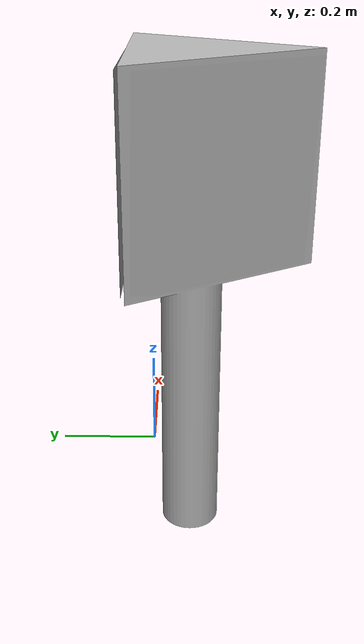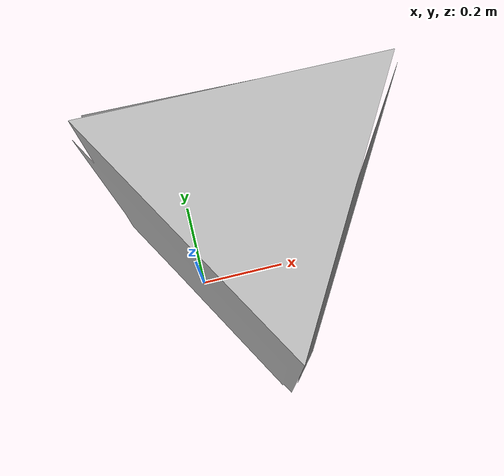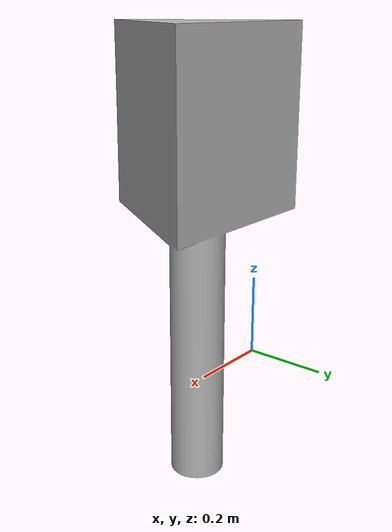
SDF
<?xml version="1.0" ?>
<sdf version="1.6">
  <model name="kitchen_spatula">
    <static>true</static>
    <link name="link">
      <pose>0 0 0 0 0 0</pose>
      <inertial>
  <pose>0.13606 0.00000 0.02002 0 0 0</pose>
  <inertia>
    <ixx>0.00016</ixx>
    <ixy>0</ixy>
    <ixz>0.00030</ixz>
    <iyy>0.00113</iyy>
    <iyz>0</iyz>
    <izz>0.00106</izz>
  </inertia>
  <mass>0.14867</mass>
</inertial>
      <visual name="visual">
    <pose>0 0 0 0 0 0</pose>
    <geometry>
      <mesh>
        <uri>model://artag/meshes/artag.dae</uri>
        <scale>0.0001 0.0001 0.0001</scale>
      </mesh>
    </geometry>
    <material>
      <script>
        <uri>model://artag/materials/scripts</uri>
        <uri>model://artag/materials/textures</uri>
        <name>Gazebo/ARTAG</name>
      </script>
    </material>
      </visual>
      <collision name="collision">
    <pose>0 0 0 0 0 0</pose>
    <geometry>
      <mesh>
        <uri>model://artag/meshes/artag.dae</uri>
        <scale>0.0001 0.0001 0.0001</scale>
      </mesh>
    </geometry>
      </collision>
    </link>
  </model>
</sdf>
